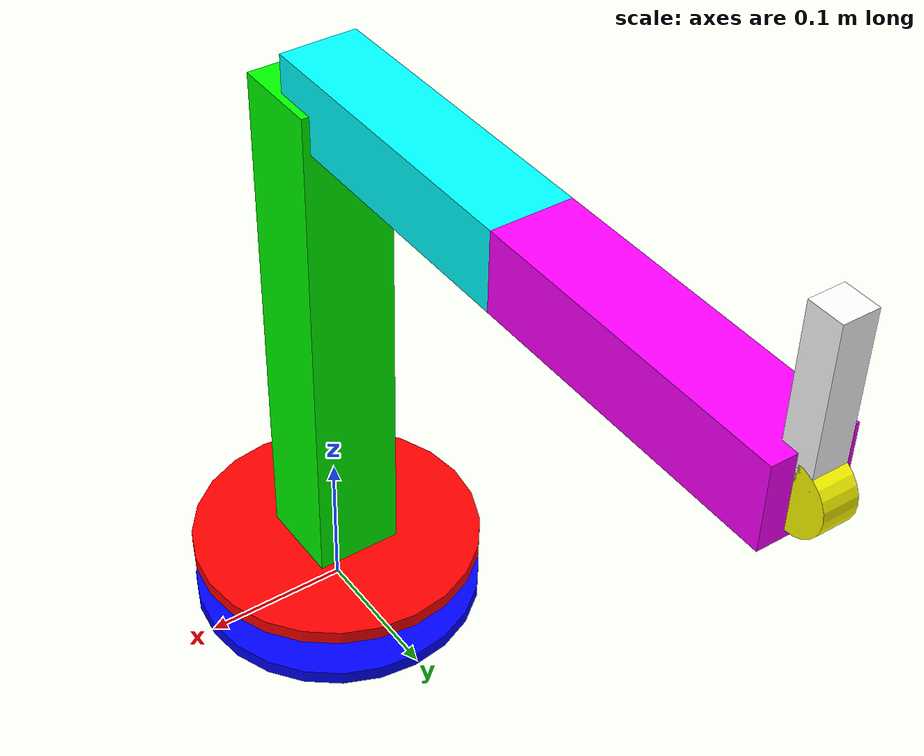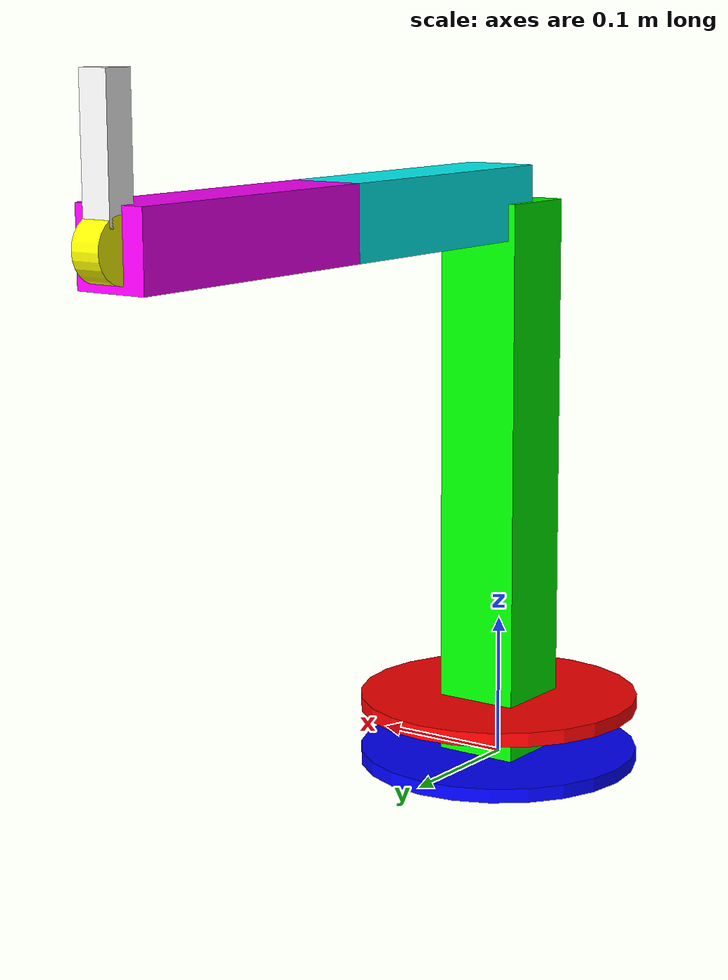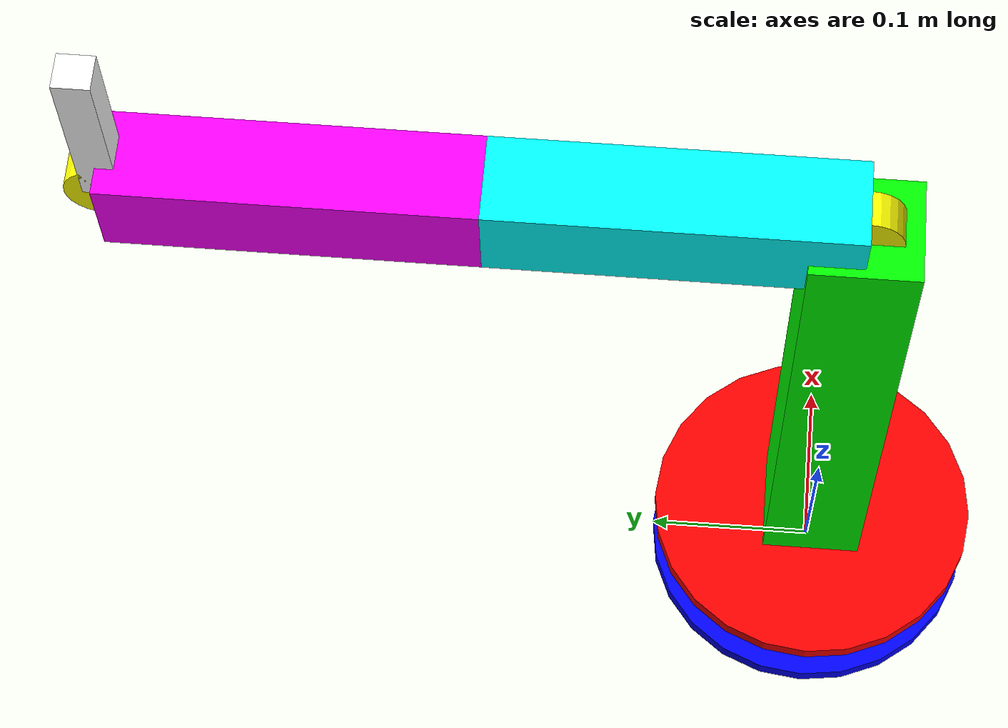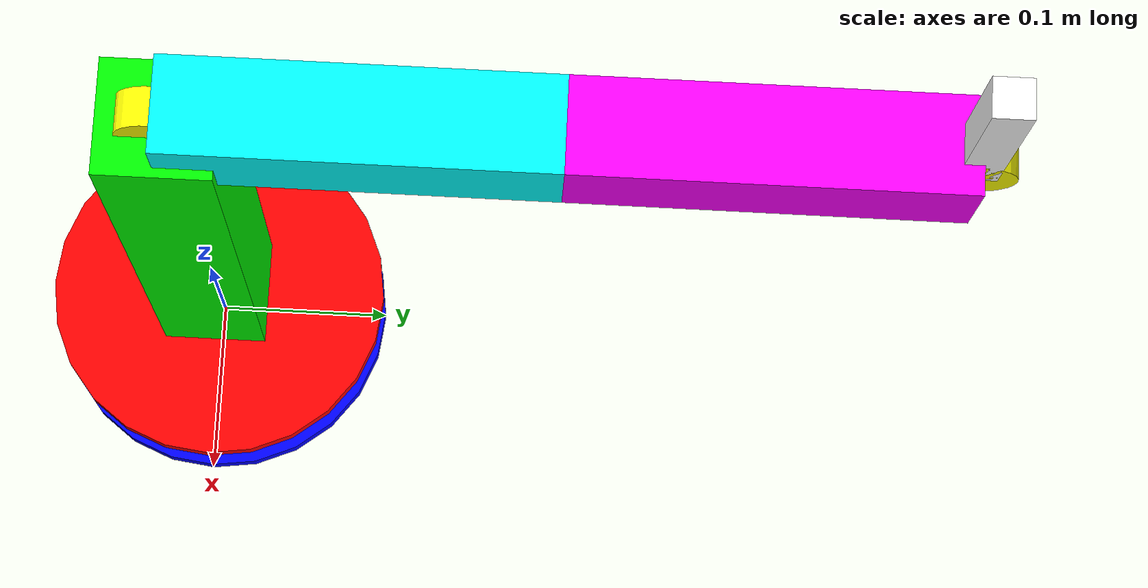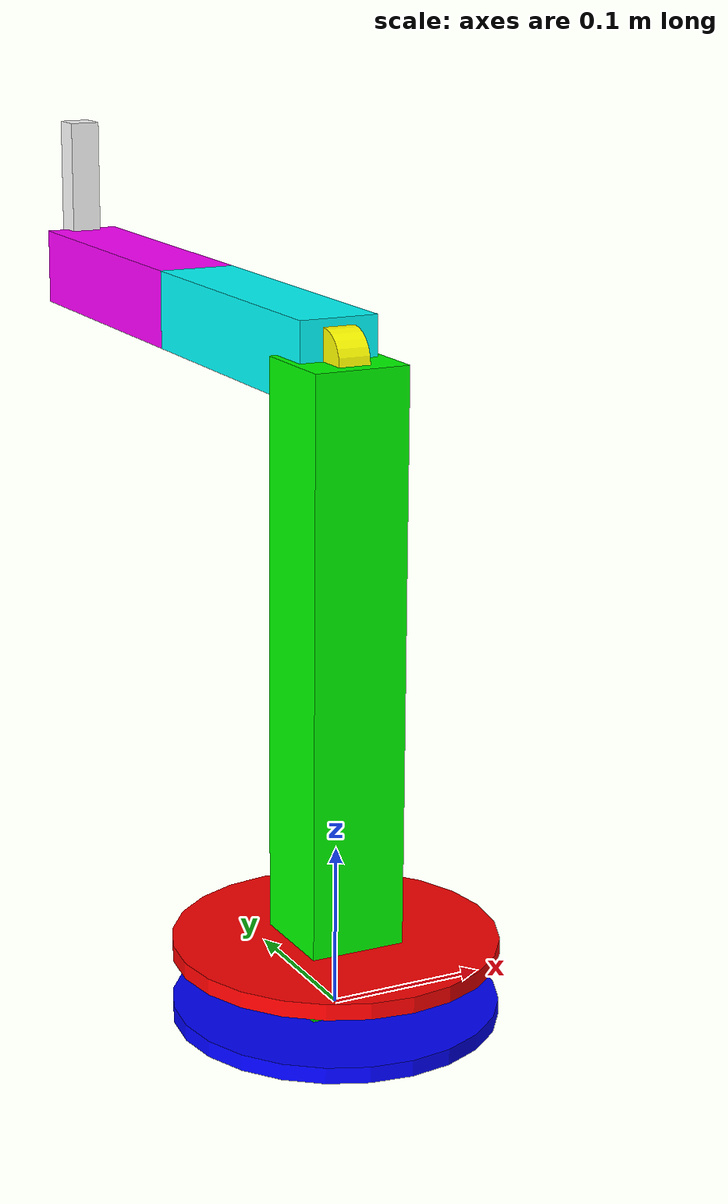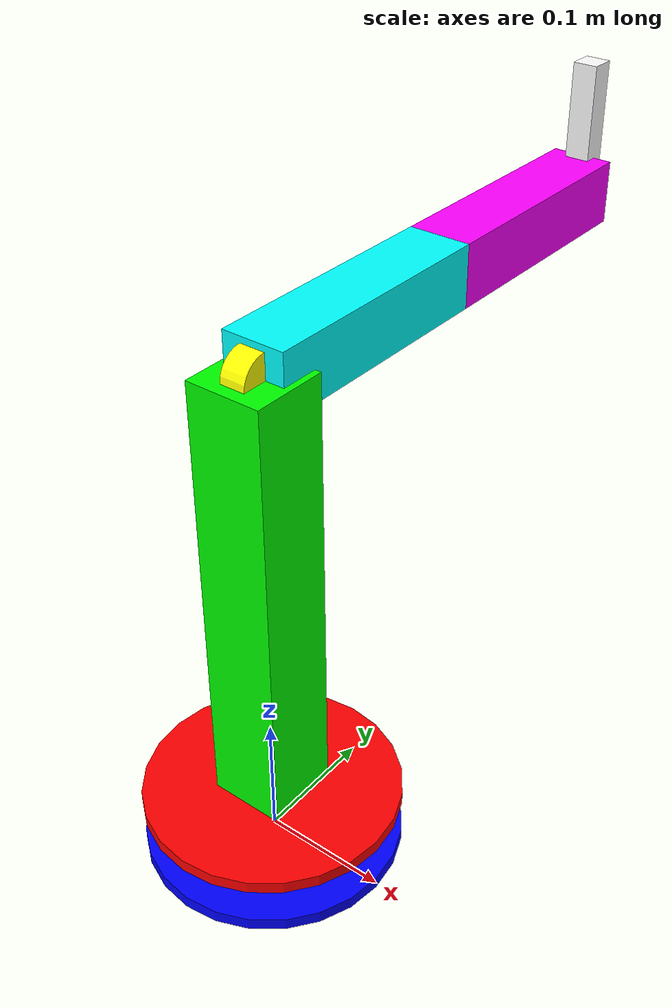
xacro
<?xml version="1.0"?>
<robot name="chess_robot" xmlns:xacro="http://www.ros.org/wiki/xacro">

    <xacro:arg name="prefix" default="" />

    <xacro:include filename="chess_robot.urdf.xacro" />

    <link name="world"/>
    <joint name="$(arg prefix)world_fixed" type="fixed">
        <parent link="world"/>
        <child link="$(arg prefix)base_link1"/>
        <origin xyz="0 0 0" rpy="0 0 0"/>
    </joint>

    <xacro:chess_robot prefix="$(arg prefix)" />

</robot>

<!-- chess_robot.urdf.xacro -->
<robot xmlns:xacro="http://www.ros.org/wiki/xacro">
    <xacro:macro name="chess_robot" params="prefix">

        <!-- link1 (base) -->
        <link name="${prefix}base_link1">
            <visual>
                <geometry>
                    <cylinder length="0.01" radius="0.1"/>
                </geometry>
                <material name="blue">
                    <color rgba="0 0 1 1"/>
                </material>
            </visual>
        </link>

        <!-- joint1 -->
        <joint name="motor_joint" type="revolute">
            <parent link="${prefix}base_link1"/>
            <child link="${prefix}base_link2"/>
            <origin xyz="0 0 0" rpy="0 0 0"/>
            <axis xyz="0 0 1"/>
            <limit effort="1.0" velocity="1.0" lower="${-pi}" upper="${pi}"/>
        </joint>

        <!-- link2 (base) -->
        <link name="${prefix}base_link2">
            <visual>
                <origin xyz="0 0 0.04" rpy="0 0 0"/>
                <geometry>
                    <cylinder length="0.01" radius="0.1"/>
                </geometry>
                <material name="red">
                    <color rgba="1 0 0 1"/>
                </material>
            </visual>
            <visual>
                <origin xyz="0 0 0.2" rpy="0 0 0"/>
                <geometry>
                    <box size="0.06 0.06 0.4"/>
                </geometry>
                <material name="green">
                    <color rgba="0 1 0 1"/>
                </material>
            </visual>
        </link>

        <!-- joint2 -->
        <joint name="shoulder_revolute_joint" type="revolute">
            <parent link="${prefix}base_link2"/>
            <child link="${prefix}gear1"/>
            <origin xyz="0 0 0.4" rpy="0 0 0"/>
            <axis xyz="1 0 0"/>
            <limit effort="1.0" velocity="1.0" lower="${-2*pi}" upper="0"/>
        </joint>
        <joint name="shoulder_slide_joint" type="prismatic">
            <parent link="${prefix}base_link2"/>
            <child link="${prefix}arm_link1"/>
            <origin xyz="0 0 0.4" rpy="0 0 0"/>
            <axis xyz="0 0 1"/>
            <limit effort="1.0" velocity="1.0" lower="${-pi/2}" upper="${pi/2}"/>

            <mimic joint="shoulder_revolute_joint" multiplier="0.02" offset="0"/>
        </joint>

        <!-- gear1 -->
        <link name="${prefix}gear1">
            <visual>
                <origin xyz="0 0 0" rpy="0 ${pi/2} 0"/>
                <geometry>
                    <cylinder length="0.02" radius="0.02"/>
                </geometry>
                <material name="yellow">
                    <color rgba="1 1 0 1"/>
                </material>
            </visual>
        </link>
        <!-- link3 (arm_link1) -->
        <link name="${prefix}arm_link1">
            <visual>
                <origin xyz="0 0.1 0" rpy="0 0 0"/>
                <geometry>
                    <box size="0.05 0.2 0.05"/>
                </geometry>
                <material name="cyan">
                    <color rgba="0 1 1 1"/>
                </material>
            </visual>
        </link>

        <!-- joint3 -->
        <joint name="arm_joint" type="revolute">
            <parent link="${prefix}arm_link1"/>
            <child link="${prefix}arm_link2"/>
            <origin xyz="0 0.2 0" rpy="0 0 0"/>
            <axis xyz="0 0 1"/>
            <limit effort="1.0" velocity="1.0" lower="${-pi}" upper="${pi}"/>
        </joint>

        <!-- link4 (arm_link2) -->
        <link name="${prefix}arm_link2">
            <visual>
                <origin xyz="0 0.1 0" rpy="0 0 0"/>
                <geometry>
                    <box size="0.05 0.2 0.05"/>
                </geometry>
                <material name="magenta">
                    <color rgba="1 0 1 1"/>
                </material>
            </visual>
        </link>

        <!-- joint4 -->
        <joint name="hand_revolute_joint" type="revolute">
            <parent link="${prefix}arm_link2"/>
            <child link="${prefix}gear2"/>
            <origin xyz="0 0.2 0" rpy="0 0 0"/>
            <axis xyz="1 0 0"/>
            <limit effort="1.0" velocity="1.0" lower="${-2*pi}" upper="0"/>
        </joint>
        <joint name="hand_slide_joint" type="prismatic">
            <parent link="${prefix}arm_link2"/>
            <child link="${prefix}hand_link1"/>
            <origin xyz="0 0.2 0" rpy="0 0 0"/>
            <axis xyz="0 0 1"/>
            <limit effort="1.0" velocity="1.0" lower="${-pi/2}" upper="${pi/2}"/>

            <mimic joint="hand_revolute_joint" multiplier="0.02" offset="0"/>
        </joint>

        <!-- gear2-->
        <link name="${prefix}gear2">
            <visual>
                <origin xyz="0 0 0" rpy="0 ${pi/2} 0"/>
                <geometry>
                    <cylinder length="0.02" radius="0.02"/>
                </geometry>
                <material name="yellow">
                    <color rgba="1 1 0 1"/>
                </material>
            </visual>
        </link>
        <!-- link5 (hand_link1) -->
        <link name="${prefix}hand_link1">
            <visual>
                <origin xyz="0 0 0.05" rpy="0 0 0"/>
                <geometry>
                    <box size="0.02 0.02 0.1"/>
                </geometry>
                <material name="white">
                    <color rgba="1 1 1 1"/>
                </material>
            </visual>
        </link>

    </xacro:macro>
</robot>
